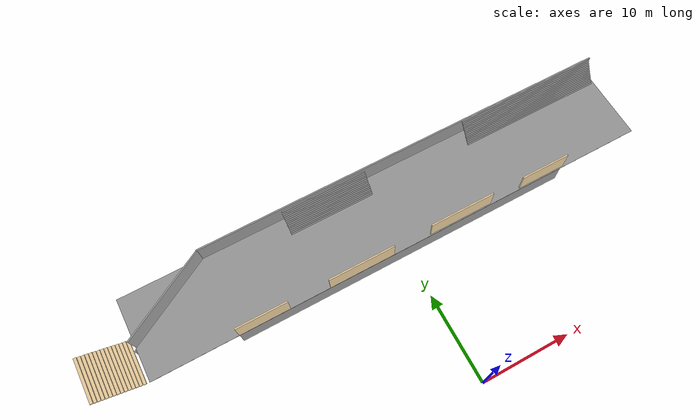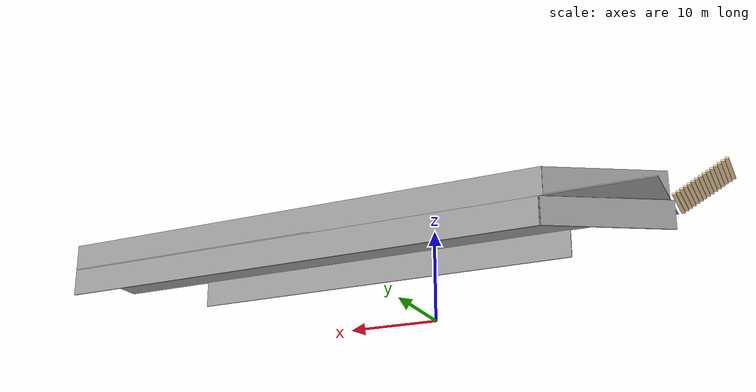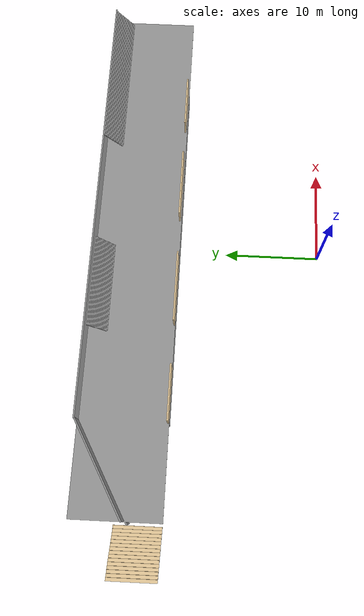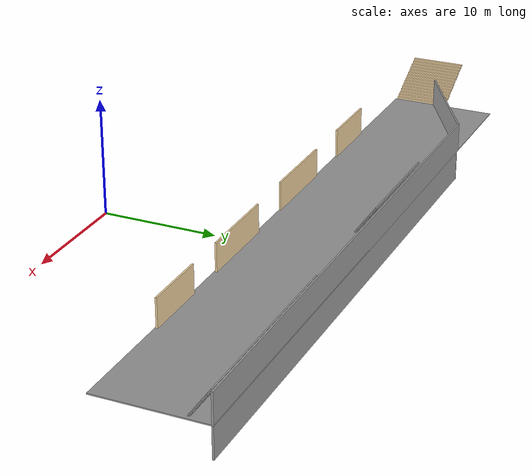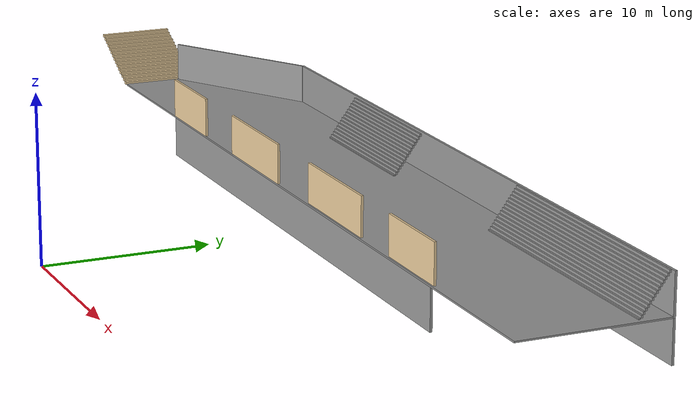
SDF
<?xml version='1.0'?>
<sdf version='1.7'>
  <model name='road1'>
    <pose>-2.28866 12.0199 0 0 -0 0</pose>
    <link name='Floor_3'>
      <collision name='Floor_3_Collision'>
        <geometry>
          <box>
            <size>56.1037 9.06127 0.1</size>
          </box>
        </geometry>
        <pose>0 0 0.05 0 -0 0</pose>
      </collision>
      <visual name='Floor_3_Visual'>
        <pose>0 0 0.05 0 -0 0</pose>
        <geometry>
          <box>
            <size>56.1037 9.06127 0.1</size>
          </box>
        </geometry>
        <material>
          <script>
            <uri>file://media/materials/scripts/gazebo.material</uri>
            <name>Gazebo/Grey</name>
          </script>
          <ambient>0.333333 0.341176 0.32549 1</ambient>
        </material>
        <meta>
          <layer>1</layer>
        </meta>
      </visual>
      <pose>2.4364 7.46177 2.5 0 -0 0</pose>
    </link>
    <link name='Stairs_0'>
      <visual name='Stairs_0_Visual_0'>
        <pose>-2.74973 9.89081 2.58333 0 -0 -3.14159</pose>
        <geometry>
          <box>
            <size>9.43495 0.119671 0.166667</size>
          </box>
        </geometry>
        <material>
          <script>
            <uri>file://media/materials/scripts/gazebo.material</uri>
            <name>Gazebo/Grey</name>
          </script>
          <ambient>1 1 1 1</ambient>
        </material>
        <meta>
          <layer>1</layer>
        </meta>
      </visual>
      <collision name='Stairs_0_Collision_0'>
        <geometry>
          <box>
            <size>9.43495 0.119671 0.166667</size>
          </box>
        </geometry>
        <pose>-2.74973 9.89081 2.58333 0 -0 -3.14159</pose>
      </collision>
      <visual name='Stairs_0_Visual_1'>
        <pose>-2.74973 10.0105 2.75 0 -0 -3.14159</pose>
        <geometry>
          <box>
            <size>9.43495 0.119671 0.166667</size>
          </box>
        </geometry>
        <material>
          <script>
            <uri>file://media/materials/scripts/gazebo.material</uri>
            <name>Gazebo/Grey</name>
          </script>
          <ambient>1 1 1 1</ambient>
        </material>
        <meta>
          <layer>1</layer>
        </meta>
      </visual>
      <collision name='Stairs_0_Collision_1'>
        <geometry>
          <box>
            <size>9.43495 0.119671 0.166667</size>
          </box>
        </geometry>
        <pose>-2.74973 10.0105 2.75 0 -0 -3.14159</pose>
      </collision>
      <visual name='Stairs_0_Visual_2'>
        <pose>-2.74973 10.1302 2.91667 0 -0 -3.14159</pose>
        <geometry>
          <box>
            <size>9.43495 0.119671 0.166667</size>
          </box>
        </geometry>
        <material>
          <script>
            <uri>file://media/materials/scripts/gazebo.material</uri>
            <name>Gazebo/Grey</name>
          </script>
          <ambient>1 1 1 1</ambient>
        </material>
        <meta>
          <layer>1</layer>
        </meta>
      </visual>
      <collision name='Stairs_0_Collision_2'>
        <geometry>
          <box>
            <size>9.43495 0.119671 0.166667</size>
          </box>
        </geometry>
        <pose>-2.74973 10.1302 2.91667 0 -0 -3.14159</pose>
      </collision>
      <visual name='Stairs_0_Visual_3'>
        <pose>-2.74973 10.2498 3.08333 0 -0 -3.14159</pose>
        <geometry>
          <box>
            <size>9.43495 0.119671 0.166667</size>
          </box>
        </geometry>
        <material>
          <script>
            <uri>file://media/materials/scripts/gazebo.material</uri>
            <name>Gazebo/Grey</name>
          </script>
          <ambient>1 1 1 1</ambient>
        </material>
        <meta>
          <layer>1</layer>
        </meta>
      </visual>
      <collision name='Stairs_0_Collision_3'>
        <geometry>
          <box>
            <size>9.43495 0.119671 0.166667</size>
          </box>
        </geometry>
        <pose>-2.74973 10.2498 3.08333 0 -0 -3.14159</pose>
      </collision>
      <visual name='Stairs_0_Visual_4'>
        <pose>-2.74973 10.3695 3.25 0 -0 -3.14159</pose>
        <geometry>
          <box>
            <size>9.43495 0.119671 0.166667</size>
          </box>
        </geometry>
        <material>
          <script>
            <uri>file://media/materials/scripts/gazebo.material</uri>
            <name>Gazebo/Grey</name>
          </script>
          <ambient>1 1 1 1</ambient>
        </material>
        <meta>
          <layer>1</layer>
        </meta>
      </visual>
      <collision name='Stairs_0_Collision_4'>
        <geometry>
          <box>
            <size>9.43495 0.119671 0.166667</size>
          </box>
        </geometry>
        <pose>-2.74973 10.3695 3.25 0 -0 -3.14159</pose>
      </collision>
      <visual name='Stairs_0_Visual_5'>
        <pose>-2.74973 10.4892 3.41667 0 -0 -3.14159</pose>
        <geometry>
          <box>
            <size>9.43495 0.119671 0.166667</size>
          </box>
        </geometry>
        <material>
          <script>
            <uri>file://media/materials/scripts/gazebo.material</uri>
            <name>Gazebo/Grey</name>
          </script>
          <ambient>1 1 1 1</ambient>
        </material>
        <meta>
          <layer>1</layer>
        </meta>
      </visual>
      <collision name='Stairs_0_Collision_5'>
        <geometry>
          <box>
            <size>9.43495 0.119671 0.166667</size>
          </box>
        </geometry>
        <pose>-2.74973 10.4892 3.41667 0 -0 -3.14159</pose>
      </collision>
      <visual name='Stairs_0_Visual_6'>
        <pose>-2.74973 10.6088 3.58333 0 -0 -3.14159</pose>
        <geometry>
          <box>
            <size>9.43495 0.119671 0.166667</size>
          </box>
        </geometry>
        <material>
          <script>
            <uri>file://media/materials/scripts/gazebo.material</uri>
            <name>Gazebo/Grey</name>
          </script>
          <ambient>1 1 1 1</ambient>
        </material>
        <meta>
          <layer>1</layer>
        </meta>
      </visual>
      <collision name='Stairs_0_Collision_6'>
        <geometry>
          <box>
            <size>9.43495 0.119671 0.166667</size>
          </box>
        </geometry>
        <pose>-2.74973 10.6088 3.58333 0 -0 -3.14159</pose>
      </collision>
      <visual name='Stairs_0_Visual_7'>
        <pose>-2.74973 10.7285 3.75 0 -0 -3.14159</pose>
        <geometry>
          <box>
            <size>9.43495 0.119671 0.166667</size>
          </box>
        </geometry>
        <material>
          <script>
            <uri>file://media/materials/scripts/gazebo.material</uri>
            <name>Gazebo/Grey</name>
          </script>
          <ambient>1 1 1 1</ambient>
        </material>
        <meta>
          <layer>1</layer>
        </meta>
      </visual>
      <collision name='Stairs_0_Collision_7'>
        <geometry>
          <box>
            <size>9.43495 0.119671 0.166667</size>
          </box>
        </geometry>
        <pose>-2.74973 10.7285 3.75 0 -0 -3.14159</pose>
      </collision>
      <visual name='Stairs_0_Visual_8'>
        <pose>-2.74973 10.8482 3.91667 0 -0 -3.14159</pose>
        <geometry>
          <box>
            <size>9.43495 0.119671 0.166667</size>
          </box>
        </geometry>
        <material>
          <script>
            <uri>file://media/materials/scripts/gazebo.material</uri>
            <name>Gazebo/Grey</name>
          </script>
          <ambient>1 1 1 1</ambient>
        </material>
        <meta>
          <layer>1</layer>
        </meta>
      </visual>
      <collision name='Stairs_0_Collision_8'>
        <geometry>
          <box>
            <size>9.43495 0.119671 0.166667</size>
          </box>
        </geometry>
        <pose>-2.74973 10.8482 3.91667 0 -0 -3.14159</pose>
      </collision>
      <visual name='Stairs_0_Visual_9'>
        <pose>-2.74973 10.9678 4.08333 0 -0 -3.14159</pose>
        <geometry>
          <box>
            <size>9.43495 0.119671 0.166667</size>
          </box>
        </geometry>
        <material>
          <script>
            <uri>file://media/materials/scripts/gazebo.material</uri>
            <name>Gazebo/Grey</name>
          </script>
          <ambient>1 1 1 1</ambient>
        </material>
        <meta>
          <layer>1</layer>
        </meta>
      </visual>
      <collision name='Stairs_0_Collision_9'>
        <geometry>
          <box>
            <size>9.43495 0.119671 0.166667</size>
          </box>
        </geometry>
        <pose>-2.74973 10.9678 4.08333 0 -0 -3.14159</pose>
      </collision>
      <visual name='Stairs_0_Visual_10'>
        <pose>-2.74973 11.0875 4.25 0 -0 -3.14159</pose>
        <geometry>
          <box>
            <size>9.43495 0.119671 0.166667</size>
          </box>
        </geometry>
        <material>
          <script>
            <uri>file://media/materials/scripts/gazebo.material</uri>
            <name>Gazebo/Grey</name>
          </script>
          <ambient>1 1 1 1</ambient>
        </material>
        <meta>
          <layer>1</layer>
        </meta>
      </visual>
      <collision name='Stairs_0_Collision_10'>
        <geometry>
          <box>
            <size>9.43495 0.119671 0.166667</size>
          </box>
        </geometry>
        <pose>-2.74973 11.0875 4.25 0 -0 -3.14159</pose>
      </collision>
      <visual name='Stairs_0_Visual_11'>
        <pose>-2.74973 11.2072 4.41667 0 -0 -3.14159</pose>
        <geometry>
          <box>
            <size>9.43495 0.119671 0.166667</size>
          </box>
        </geometry>
        <material>
          <script>
            <uri>file://media/materials/scripts/gazebo.material</uri>
            <name>Gazebo/Grey</name>
          </script>
          <ambient>1 1 1 1</ambient>
        </material>
        <meta>
          <layer>1</layer>
        </meta>
      </visual>
      <collision name='Stairs_0_Collision_11'>
        <geometry>
          <box>
            <size>9.43495 0.119671 0.166667</size>
          </box>
        </geometry>
        <pose>-2.74973 11.2072 4.41667 0 -0 -3.14159</pose>
      </collision>
      <visual name='Stairs_0_Visual_12'>
        <pose>-2.74973 11.3269 4.58333 0 -0 -3.14159</pose>
        <geometry>
          <box>
            <size>9.43495 0.119671 0.166667</size>
          </box>
        </geometry>
        <material>
          <script>
            <uri>file://media/materials/scripts/gazebo.material</uri>
            <name>Gazebo/Grey</name>
          </script>
          <ambient>1 1 1 1</ambient>
        </material>
        <meta>
          <layer>1</layer>
        </meta>
      </visual>
      <collision name='Stairs_0_Collision_12'>
        <geometry>
          <box>
            <size>9.43495 0.119671 0.166667</size>
          </box>
        </geometry>
        <pose>-2.74973 11.3269 4.58333 0 -0 -3.14159</pose>
      </collision>
      <visual name='Stairs_0_Visual_13'>
        <pose>-2.74973 11.4465 4.75 0 -0 -3.14159</pose>
        <geometry>
          <box>
            <size>9.43495 0.119671 0.166667</size>
          </box>
        </geometry>
        <material>
          <script>
            <uri>file://media/materials/scripts/gazebo.material</uri>
            <name>Gazebo/Grey</name>
          </script>
          <ambient>1 1 1 1</ambient>
        </material>
        <meta>
          <layer>1</layer>
        </meta>
      </visual>
      <collision name='Stairs_0_Collision_13'>
        <geometry>
          <box>
            <size>9.43495 0.119671 0.166667</size>
          </box>
        </geometry>
        <pose>-2.74973 11.4465 4.75 0 -0 -3.14159</pose>
      </collision>
      <visual name='Stairs_0_Visual_14'>
        <pose>-2.74973 11.5662 4.91667 0 -0 -3.14159</pose>
        <geometry>
          <box>
            <size>9.43495 0.119671 0.166667</size>
          </box>
        </geometry>
        <material>
          <script>
            <uri>file://media/materials/scripts/gazebo.material</uri>
            <name>Gazebo/Grey</name>
          </script>
          <ambient>1 1 1 1</ambient>
        </material>
        <meta>
          <layer>1</layer>
        </meta>
      </visual>
      <collision name='Stairs_0_Collision_14'>
        <geometry>
          <box>
            <size>9.43495 0.119671 0.166667</size>
          </box>
        </geometry>
        <pose>-2.74973 11.5662 4.91667 0 -0 -3.14159</pose>
      </collision>
    </link>
    <link name='Stairs_1'>
      <visual name='Stairs_1_Visual_0'>
        <pose>22.0259 10.084 2.58333 0 -0 -3.14159</pose>
        <geometry>
          <box>
            <size>16.378 0.119843 0.166667</size>
          </box>
        </geometry>
        <material>
          <script>
            <uri>file://media/materials/scripts/gazebo.material</uri>
            <name>Gazebo/Grey</name>
          </script>
          <ambient>1 1 1 1</ambient>
        </material>
        <meta>
          <layer>1</layer>
        </meta>
      </visual>
      <collision name='Stairs_1_Collision_0'>
        <geometry>
          <box>
            <size>16.378 0.119843 0.166667</size>
          </box>
        </geometry>
        <pose>22.0259 10.084 2.58333 0 -0 -3.14159</pose>
      </collision>
      <visual name='Stairs_1_Visual_1'>
        <pose>22.0259 10.2039 2.75 0 -0 -3.14159</pose>
        <geometry>
          <box>
            <size>16.378 0.119843 0.166667</size>
          </box>
        </geometry>
        <material>
          <script>
            <uri>file://media/materials/scripts/gazebo.material</uri>
            <name>Gazebo/Grey</name>
          </script>
          <ambient>1 1 1 1</ambient>
        </material>
        <meta>
          <layer>1</layer>
        </meta>
      </visual>
      <collision name='Stairs_1_Collision_1'>
        <geometry>
          <box>
            <size>16.378 0.119843 0.166667</size>
          </box>
        </geometry>
        <pose>22.0259 10.2039 2.75 0 -0 -3.14159</pose>
      </collision>
      <visual name='Stairs_1_Visual_2'>
        <pose>22.0259 10.3237 2.91667 0 -0 -3.14159</pose>
        <geometry>
          <box>
            <size>16.378 0.119843 0.166667</size>
          </box>
        </geometry>
        <material>
          <script>
            <uri>file://media/materials/scripts/gazebo.material</uri>
            <name>Gazebo/Grey</name>
          </script>
          <ambient>1 1 1 1</ambient>
        </material>
        <meta>
          <layer>1</layer>
        </meta>
      </visual>
      <collision name='Stairs_1_Collision_2'>
        <geometry>
          <box>
            <size>16.378 0.119843 0.166667</size>
          </box>
        </geometry>
        <pose>22.0259 10.3237 2.91667 0 -0 -3.14159</pose>
      </collision>
      <visual name='Stairs_1_Visual_3'>
        <pose>22.0259 10.4436 3.08333 0 -0 -3.14159</pose>
        <geometry>
          <box>
            <size>16.378 0.119843 0.166667</size>
          </box>
        </geometry>
        <material>
          <script>
            <uri>file://media/materials/scripts/gazebo.material</uri>
            <name>Gazebo/Grey</name>
          </script>
          <ambient>1 1 1 1</ambient>
        </material>
        <meta>
          <layer>1</layer>
        </meta>
      </visual>
      <collision name='Stairs_1_Collision_3'>
        <geometry>
          <box>
            <size>16.378 0.119843 0.166667</size>
          </box>
        </geometry>
        <pose>22.0259 10.4436 3.08333 0 -0 -3.14159</pose>
      </collision>
      <visual name='Stairs_1_Visual_4'>
        <pose>22.0259 10.5634 3.25 0 -0 -3.14159</pose>
        <geometry>
          <box>
            <size>16.378 0.119843 0.166667</size>
          </box>
        </geometry>
        <material>
          <script>
            <uri>file://media/materials/scripts/gazebo.material</uri>
            <name>Gazebo/Grey</name>
          </script>
          <ambient>1 1 1 1</ambient>
        </material>
        <meta>
          <layer>1</layer>
        </meta>
      </visual>
      <collision name='Stairs_1_Collision_4'>
        <geometry>
          <box>
            <size>16.378 0.119843 0.166667</size>
          </box>
        </geometry>
        <pose>22.0259 10.5634 3.25 0 -0 -3.14159</pose>
      </collision>
      <visual name='Stairs_1_Visual_5'>
        <pose>22.0259 10.6832 3.41667 0 -0 -3.14159</pose>
        <geometry>
          <box>
            <size>16.378 0.119843 0.166667</size>
          </box>
        </geometry>
        <material>
          <script>
            <uri>file://media/materials/scripts/gazebo.material</uri>
            <name>Gazebo/Grey</name>
          </script>
          <ambient>1 1 1 1</ambient>
        </material>
        <meta>
          <layer>1</layer>
        </meta>
      </visual>
      <collision name='Stairs_1_Collision_5'>
        <geometry>
          <box>
            <size>16.378 0.119843 0.166667</size>
          </box>
        </geometry>
        <pose>22.0259 10.6832 3.41667 0 -0 -3.14159</pose>
      </collision>
      <visual name='Stairs_1_Visual_6'>
        <pose>22.0259 10.8031 3.58333 0 -0 -3.14159</pose>
        <geometry>
          <box>
            <size>16.378 0.119843 0.166667</size>
          </box>
        </geometry>
        <material>
          <script>
            <uri>file://media/materials/scripts/gazebo.material</uri>
            <name>Gazebo/Grey</name>
          </script>
          <ambient>1 1 1 1</ambient>
        </material>
        <meta>
          <layer>1</layer>
        </meta>
      </visual>
      <collision name='Stairs_1_Collision_6'>
        <geometry>
          <box>
            <size>16.378 0.119843 0.166667</size>
          </box>
        </geometry>
        <pose>22.0259 10.8031 3.58333 0 -0 -3.14159</pose>
      </collision>
      <visual name='Stairs_1_Visual_7'>
        <pose>22.0259 10.9229 3.75 0 -0 -3.14159</pose>
        <geometry>
          <box>
            <size>16.378 0.119843 0.166667</size>
          </box>
        </geometry>
        <material>
          <script>
            <uri>file://media/materials/scripts/gazebo.material</uri>
            <name>Gazebo/Grey</name>
          </script>
          <ambient>1 1 1 1</ambient>
        </material>
        <meta>
          <layer>1</layer>
        </meta>
      </visual>
      <collision name='Stairs_1_Collision_7'>
        <geometry>
          <box>
            <size>16.378 0.119843 0.166667</size>
          </box>
        </geometry>
        <pose>22.0259 10.9229 3.75 0 -0 -3.14159</pose>
      </collision>
      <visual name='Stairs_1_Visual_8'>
        <pose>22.0259 11.0428 3.91667 0 -0 -3.14159</pose>
        <geometry>
          <box>
            <size>16.378 0.119843 0.166667</size>
          </box>
        </geometry>
        <material>
          <script>
            <uri>file://media/materials/scripts/gazebo.material</uri>
            <name>Gazebo/Grey</name>
          </script>
          <ambient>1 1 1 1</ambient>
        </material>
        <meta>
          <layer>1</layer>
        </meta>
      </visual>
      <collision name='Stairs_1_Collision_8'>
        <geometry>
          <box>
            <size>16.378 0.119843 0.166667</size>
          </box>
        </geometry>
        <pose>22.0259 11.0428 3.91667 0 -0 -3.14159</pose>
      </collision>
      <visual name='Stairs_1_Visual_9'>
        <pose>22.0259 11.1626 4.08333 0 -0 -3.14159</pose>
        <geometry>
          <box>
            <size>16.378 0.119843 0.166667</size>
          </box>
        </geometry>
        <material>
          <script>
            <uri>file://media/materials/scripts/gazebo.material</uri>
            <name>Gazebo/Grey</name>
          </script>
          <ambient>1 1 1 1</ambient>
        </material>
        <meta>
          <layer>1</layer>
        </meta>
      </visual>
      <collision name='Stairs_1_Collision_9'>
        <geometry>
          <box>
            <size>16.378 0.119843 0.166667</size>
          </box>
        </geometry>
        <pose>22.0259 11.1626 4.08333 0 -0 -3.14159</pose>
      </collision>
      <visual name='Stairs_1_Visual_10'>
        <pose>22.0259 11.2825 4.25 0 -0 -3.14159</pose>
        <geometry>
          <box>
            <size>16.378 0.119843 0.166667</size>
          </box>
        </geometry>
        <material>
          <script>
            <uri>file://media/materials/scripts/gazebo.material</uri>
            <name>Gazebo/Grey</name>
          </script>
          <ambient>1 1 1 1</ambient>
        </material>
        <meta>
          <layer>1</layer>
        </meta>
      </visual>
      <collision name='Stairs_1_Collision_10'>
        <geometry>
          <box>
            <size>16.378 0.119843 0.166667</size>
          </box>
        </geometry>
        <pose>22.0259 11.2825 4.25 0 -0 -3.14159</pose>
      </collision>
      <visual name='Stairs_1_Visual_11'>
        <pose>22.0259 11.4023 4.41667 0 -0 -3.14159</pose>
        <geometry>
          <box>
            <size>16.378 0.119843 0.166667</size>
          </box>
        </geometry>
        <material>
          <script>
            <uri>file://media/materials/scripts/gazebo.material</uri>
            <name>Gazebo/Grey</name>
          </script>
          <ambient>1 1 1 1</ambient>
        </material>
        <meta>
          <layer>1</layer>
        </meta>
      </visual>
      <collision name='Stairs_1_Collision_11'>
        <geometry>
          <box>
            <size>16.378 0.119843 0.166667</size>
          </box>
        </geometry>
        <pose>22.0259 11.4023 4.41667 0 -0 -3.14159</pose>
      </collision>
      <visual name='Stairs_1_Visual_12'>
        <pose>22.0259 11.5221 4.58333 0 -0 -3.14159</pose>
        <geometry>
          <box>
            <size>16.378 0.119843 0.166667</size>
          </box>
        </geometry>
        <material>
          <script>
            <uri>file://media/materials/scripts/gazebo.material</uri>
            <name>Gazebo/Grey</name>
          </script>
          <ambient>1 1 1 1</ambient>
        </material>
        <meta>
          <layer>1</layer>
        </meta>
      </visual>
      <collision name='Stairs_1_Collision_12'>
        <geometry>
          <box>
            <size>16.378 0.119843 0.166667</size>
          </box>
        </geometry>
        <pose>22.0259 11.5221 4.58333 0 -0 -3.14159</pose>
      </collision>
      <visual name='Stairs_1_Visual_13'>
        <pose>22.0259 11.642 4.75 0 -0 -3.14159</pose>
        <geometry>
          <box>
            <size>16.378 0.119843 0.166667</size>
          </box>
        </geometry>
        <material>
          <script>
            <uri>file://media/materials/scripts/gazebo.material</uri>
            <name>Gazebo/Grey</name>
          </script>
          <ambient>1 1 1 1</ambient>
        </material>
        <meta>
          <layer>1</layer>
        </meta>
      </visual>
      <collision name='Stairs_1_Collision_13'>
        <geometry>
          <box>
            <size>16.378 0.119843 0.166667</size>
          </box>
        </geometry>
        <pose>22.0259 11.642 4.75 0 -0 -3.14159</pose>
      </collision>
      <visual name='Stairs_1_Visual_14'>
        <pose>22.0259 11.7618 4.91667 0 -0 -3.14159</pose>
        <geometry>
          <box>
            <size>16.378 0.119843 0.166667</size>
          </box>
        </geometry>
        <material>
          <script>
            <uri>file://media/materials/scripts/gazebo.material</uri>
            <name>Gazebo/Grey</name>
          </script>
          <ambient>1 1 1 1</ambient>
        </material>
        <meta>
          <layer>1</layer>
        </meta>
      </visual>
      <collision name='Stairs_1_Collision_14'>
        <geometry>
          <box>
            <size>16.378 0.119843 0.166667</size>
          </box>
        </geometry>
        <pose>22.0259 11.7618 4.91667 0 -0 -3.14159</pose>
      </collision>
    </link>
    <link name='Stairs_3'>
      <visual name='Stairs_3_Visual_0'>
        <pose>-26.0551 5.27753 2.58333 0 -0 -1.5708</pose>
        <geometry>
          <box>
            <size>4.65 0.305733 0.166667</size>
          </box>
        </geometry>
        <material>
          <script>
            <uri>file://media/materials/scripts/gazebo.material</uri>
            <name>Gazebo/Grey</name>
          </script>
          <ambient>0.921569 0.807843 0.615686 1</ambient>
        </material>
        <meta>
          <layer>1</layer>
        </meta>
      </visual>
      <collision name='Stairs_3_Collision_0'>
        <geometry>
          <box>
            <size>4.65 0.305733 0.166667</size>
          </box>
        </geometry>
        <pose>-26.0551 5.27753 2.58333 0 -0 -1.5708</pose>
      </collision>
      <visual name='Stairs_3_Visual_1'>
        <pose>-26.3608 5.27753 2.75 0 -0 -1.5708</pose>
        <geometry>
          <box>
            <size>4.65 0.305733 0.166667</size>
          </box>
        </geometry>
        <material>
          <script>
            <uri>file://media/materials/scripts/gazebo.material</uri>
            <name>Gazebo/Grey</name>
          </script>
          <ambient>0.921569 0.807843 0.615686 1</ambient>
        </material>
        <meta>
          <layer>1</layer>
        </meta>
      </visual>
      <collision name='Stairs_3_Collision_1'>
        <geometry>
          <box>
            <size>4.65 0.305733 0.166667</size>
          </box>
        </geometry>
        <pose>-26.3608 5.27753 2.75 0 -0 -1.5708</pose>
      </collision>
      <visual name='Stairs_3_Visual_2'>
        <pose>-26.6666 5.27753 2.91667 0 -0 -1.5708</pose>
        <geometry>
          <box>
            <size>4.65 0.305733 0.166667</size>
          </box>
        </geometry>
        <material>
          <script>
            <uri>file://media/materials/scripts/gazebo.material</uri>
            <name>Gazebo/Grey</name>
          </script>
          <ambient>0.921569 0.807843 0.615686 1</ambient>
        </material>
        <meta>
          <layer>1</layer>
        </meta>
      </visual>
      <collision name='Stairs_3_Collision_2'>
        <geometry>
          <box>
            <size>4.65 0.305733 0.166667</size>
          </box>
        </geometry>
        <pose>-26.6666 5.27753 2.91667 0 -0 -1.5708</pose>
      </collision>
      <visual name='Stairs_3_Visual_3'>
        <pose>-26.9723 5.27753 3.08333 0 -0 -1.5708</pose>
        <geometry>
          <box>
            <size>4.65 0.305733 0.166667</size>
          </box>
        </geometry>
        <material>
          <script>
            <uri>file://media/materials/scripts/gazebo.material</uri>
            <name>Gazebo/Grey</name>
          </script>
          <ambient>0.921569 0.807843 0.615686 1</ambient>
        </material>
        <meta>
          <layer>1</layer>
        </meta>
      </visual>
      <collision name='Stairs_3_Collision_3'>
        <geometry>
          <box>
            <size>4.65 0.305733 0.166667</size>
          </box>
        </geometry>
        <pose>-26.9723 5.27753 3.08333 0 -0 -1.5708</pose>
      </collision>
      <visual name='Stairs_3_Visual_4'>
        <pose>-27.278 5.27753 3.25 0 -0 -1.5708</pose>
        <geometry>
          <box>
            <size>4.65 0.305733 0.166667</size>
          </box>
        </geometry>
        <material>
          <script>
            <uri>file://media/materials/scripts/gazebo.material</uri>
            <name>Gazebo/Grey</name>
          </script>
          <ambient>0.921569 0.807843 0.615686 1</ambient>
        </material>
        <meta>
          <layer>1</layer>
        </meta>
      </visual>
      <collision name='Stairs_3_Collision_4'>
        <geometry>
          <box>
            <size>4.65 0.305733 0.166667</size>
          </box>
        </geometry>
        <pose>-27.278 5.27753 3.25 0 -0 -1.5708</pose>
      </collision>
      <visual name='Stairs_3_Visual_5'>
        <pose>-27.5838 5.27753 3.41667 0 -0 -1.5708</pose>
        <geometry>
          <box>
            <size>4.65 0.305733 0.166667</size>
          </box>
        </geometry>
        <material>
          <script>
            <uri>file://media/materials/scripts/gazebo.material</uri>
            <name>Gazebo/Grey</name>
          </script>
          <ambient>0.921569 0.807843 0.615686 1</ambient>
        </material>
        <meta>
          <layer>1</layer>
        </meta>
      </visual>
      <collision name='Stairs_3_Collision_5'>
        <geometry>
          <box>
            <size>4.65 0.305733 0.166667</size>
          </box>
        </geometry>
        <pose>-27.5838 5.27753 3.41667 0 -0 -1.5708</pose>
      </collision>
      <visual name='Stairs_3_Visual_6'>
        <pose>-27.8895 5.27753 3.58333 0 -0 -1.5708</pose>
        <geometry>
          <box>
            <size>4.65 0.305733 0.166667</size>
          </box>
        </geometry>
        <material>
          <script>
            <uri>file://media/materials/scripts/gazebo.material</uri>
            <name>Gazebo/Grey</name>
          </script>
          <ambient>0.921569 0.807843 0.615686 1</ambient>
        </material>
        <meta>
          <layer>1</layer>
        </meta>
      </visual>
      <collision name='Stairs_3_Collision_6'>
        <geometry>
          <box>
            <size>4.65 0.305733 0.166667</size>
          </box>
        </geometry>
        <pose>-27.8895 5.27753 3.58333 0 -0 -1.5708</pose>
      </collision>
      <visual name='Stairs_3_Visual_7'>
        <pose>-28.1952 5.27753 3.75 0 -0 -1.5708</pose>
        <geometry>
          <box>
            <size>4.65 0.305733 0.166667</size>
          </box>
        </geometry>
        <material>
          <script>
            <uri>file://media/materials/scripts/gazebo.material</uri>
            <name>Gazebo/Grey</name>
          </script>
          <ambient>0.921569 0.807843 0.615686 1</ambient>
        </material>
        <meta>
          <layer>1</layer>
        </meta>
      </visual>
      <collision name='Stairs_3_Collision_7'>
        <geometry>
          <box>
            <size>4.65 0.305733 0.166667</size>
          </box>
        </geometry>
        <pose>-28.1952 5.27753 3.75 0 -0 -1.5708</pose>
      </collision>
      <visual name='Stairs_3_Visual_8'>
        <pose>-28.501 5.27753 3.91667 0 -0 -1.5708</pose>
        <geometry>
          <box>
            <size>4.65 0.305733 0.166667</size>
          </box>
        </geometry>
        <material>
          <script>
            <uri>file://media/materials/scripts/gazebo.material</uri>
            <name>Gazebo/Grey</name>
          </script>
          <ambient>0.921569 0.807843 0.615686 1</ambient>
        </material>
        <meta>
          <layer>1</layer>
        </meta>
      </visual>
      <collision name='Stairs_3_Collision_8'>
        <geometry>
          <box>
            <size>4.65 0.305733 0.166667</size>
          </box>
        </geometry>
        <pose>-28.501 5.27753 3.91667 0 -0 -1.5708</pose>
      </collision>
      <visual name='Stairs_3_Visual_9'>
        <pose>-28.8067 5.27753 4.08333 0 -0 -1.5708</pose>
        <geometry>
          <box>
            <size>4.65 0.305733 0.166667</size>
          </box>
        </geometry>
        <material>
          <script>
            <uri>file://media/materials/scripts/gazebo.material</uri>
            <name>Gazebo/Grey</name>
          </script>
          <ambient>0.921569 0.807843 0.615686 1</ambient>
        </material>
        <meta>
          <layer>1</layer>
        </meta>
      </visual>
      <collision name='Stairs_3_Collision_9'>
        <geometry>
          <box>
            <size>4.65 0.305733 0.166667</size>
          </box>
        </geometry>
        <pose>-28.8067 5.27753 4.08333 0 -0 -1.5708</pose>
      </collision>
      <visual name='Stairs_3_Visual_10'>
        <pose>-29.1124 5.27753 4.25 0 -0 -1.5708</pose>
        <geometry>
          <box>
            <size>4.65 0.305733 0.166667</size>
          </box>
        </geometry>
        <material>
          <script>
            <uri>file://media/materials/scripts/gazebo.material</uri>
            <name>Gazebo/Grey</name>
          </script>
          <ambient>0.921569 0.807843 0.615686 1</ambient>
        </material>
        <meta>
          <layer>1</layer>
        </meta>
      </visual>
      <collision name='Stairs_3_Collision_10'>
        <geometry>
          <box>
            <size>4.65 0.305733 0.166667</size>
          </box>
        </geometry>
        <pose>-29.1124 5.27753 4.25 0 -0 -1.5708</pose>
      </collision>
      <visual name='Stairs_3_Visual_11'>
        <pose>-29.4182 5.27753 4.41667 0 -0 -1.5708</pose>
        <geometry>
          <box>
            <size>4.65 0.305733 0.166667</size>
          </box>
        </geometry>
        <material>
          <script>
            <uri>file://media/materials/scripts/gazebo.material</uri>
            <name>Gazebo/Grey</name>
          </script>
          <ambient>0.921569 0.807843 0.615686 1</ambient>
        </material>
        <meta>
          <layer>1</layer>
        </meta>
      </visual>
      <collision name='Stairs_3_Collision_11'>
        <geometry>
          <box>
            <size>4.65 0.305733 0.166667</size>
          </box>
        </geometry>
        <pose>-29.4182 5.27753 4.41667 0 -0 -1.5708</pose>
      </collision>
      <visual name='Stairs_3_Visual_12'>
        <pose>-29.7239 5.27753 4.58333 0 -0 -1.5708</pose>
        <geometry>
          <box>
            <size>4.65 0.305733 0.166667</size>
          </box>
        </geometry>
        <material>
          <script>
            <uri>file://media/materials/scripts/gazebo.material</uri>
            <name>Gazebo/Grey</name>
          </script>
          <ambient>0.921569 0.807843 0.615686 1</ambient>
        </material>
        <meta>
          <layer>1</layer>
        </meta>
      </visual>
      <collision name='Stairs_3_Collision_12'>
        <geometry>
          <box>
            <size>4.65 0.305733 0.166667</size>
          </box>
        </geometry>
        <pose>-29.7239 5.27753 4.58333 0 -0 -1.5708</pose>
      </collision>
      <visual name='Stairs_3_Visual_13'>
        <pose>-30.0296 5.27753 4.75 0 -0 -1.5708</pose>
        <geometry>
          <box>
            <size>4.65 0.305733 0.166667</size>
          </box>
        </geometry>
        <material>
          <script>
            <uri>file://media/materials/scripts/gazebo.material</uri>
            <name>Gazebo/Grey</name>
          </script>
          <ambient>0.921569 0.807843 0.615686 1</ambient>
        </material>
        <meta>
          <layer>1</layer>
        </meta>
      </visual>
      <collision name='Stairs_3_Collision_13'>
        <geometry>
          <box>
            <size>4.65 0.305733 0.166667</size>
          </box>
        </geometry>
        <pose>-30.0296 5.27753 4.75 0 -0 -1.5708</pose>
      </collision>
      <visual name='Stairs_3_Visual_14'>
        <pose>-30.3354 5.27753 4.91667 0 -0 -1.5708</pose>
        <geometry>
          <box>
            <size>4.65 0.305733 0.166667</size>
          </box>
        </geometry>
        <material>
          <script>
            <uri>file://media/materials/scripts/gazebo.material</uri>
            <name>Gazebo/Grey</name>
          </script>
          <ambient>0.921569 0.807843 0.615686 1</ambient>
        </material>
        <meta>
          <layer>1</layer>
        </meta>
      </visual>
      <collision name='Stairs_3_Collision_14'>
        <geometry>
          <box>
            <size>4.65 0.305733 0.166667</size>
          </box>
        </geometry>
        <pose>-30.3354 5.27753 4.91667 0 -0 -1.5708</pose>
      </collision>
    </link>
    <link name='Wall_0'>
      <collision name='Wall_0_Collision'>
        <geometry>
          <box>
            <size>37.5 0.15 2.5</size>
          </box>
        </geometry>
        <pose>0 0 1.25 0 -0 0</pose>
      </collision>
      <visual name='Wall_0_Visual'>
        <pose>0 0 1.25 0 -0 0</pose>
        <geometry>
          <box>
            <size>37.5 0.15 2.5</size>
          </box>
        </geometry>
        <material>
          <script>
            <uri>file://media/materials/scripts/gazebo.material</uri>
            <name>Gazebo/Grey</name>
          </script>
          <ambient>1 1 1 1</ambient>
        </material>
        <meta>
          <layer>0</layer>
        </meta>
      </visual>
      <pose>2.3404 3.04449 0 0 -0 3.14159</pose>
    </link>
    <link name='Wall_17'>
      <collision name='Wall_17_Collision'>
        <geometry>
          <box>
            <size>47.0461 0.15 2.5</size>
          </box>
        </geometry>
        <pose>0 0 1.25 0 -0 0</pose>
      </collision>
      <visual name='Wall_17_Visual'>
        <pose>0 0 1.25 0 -0 0</pose>
        <geometry>
          <box>
            <size>47.0461 0.15 2.5</size>
          </box>
        </geometry>
        <material>
          <script>
            <uri>file://media/materials/scripts/gazebo.material</uri>
            <name>Gazebo/Grey</name>
          </script>
          <ambient>1 1 1 1</ambient>
        </material>
        <meta>
          <layer>1</layer>
        </meta>
      </visual>
      <pose>6.96521 11.9174 2.5 0 -0 3.14159</pose>
    </link>
    <link name='Wall_2'>
      <collision name='Wall_2_Collision'>
        <geometry>
          <box>
            <size>46.75 0.15 2.5</size>
          </box>
        </geometry>
        <pose>0 0 1.25 0 -0 0</pose>
      </collision>
      <visual name='Wall_2_Visual'>
        <pose>0 0 1.25 0 -0 0</pose>
        <geometry>
          <box>
            <size>46.75 0.15 2.5</size>
          </box>
        </geometry>
        <material>
          <script>
            <uri>file://media/materials/scripts/gazebo.material</uri>
            <name>Gazebo/Grey</name>
          </script>
          <ambient>1 1 1 1</ambient>
        </material>
        <meta>
          <layer>0</layer>
        </meta>
      </visual>
      <pose>7.11324 11.9174 0 0 -0 3.14159</pose>
    </link>
    <link name='Wall_22'>
      <collision name='Wall_22_Collision'>
        <geometry>
          <box>
            <size>5.5 0.15 2.5</size>
          </box>
        </geometry>
        <pose>0 0 1.25 0 -0 0</pose>
      </collision>
      <visual name='Wall_22_Visual'>
        <pose>0 0 1.25 0 -0 0</pose>
        <geometry>
          <box>
            <size>5.5 0.15 2.5</size>
          </box>
        </geometry>
        <material>
          <script>
            <uri>file://media/materials/scripts/gazebo.material</uri>
            <name>Gazebo/Grey</name>
          </script>
          <ambient>0.921569 0.807843 0.615686 1</ambient>
        </material>
        <meta>
          <layer>1</layer>
        </meta>
      </visual>
      <pose>18.6157 3.11014 2.5 0 -0 0</pose>
    </link>
    <link name='Wall_24'>
      <collision name='Wall_24_Collision'>
        <geometry>
          <box>
            <size>7.25 0.15 2.5</size>
          </box>
        </geometry>
        <pose>0 0 1.25 0 -0 0</pose>
      </collision>
      <visual name='Wall_24_Visual'>
        <pose>0 0 1.25 0 -0 0</pose>
        <geometry>
          <box>
            <size>7.25 0.15 2.5</size>
          </box>
        </geometry>
        <material>
          <script>
            <uri>file://media/materials/scripts/gazebo.material</uri>
            <name>Gazebo/Grey</name>
          </script>
          <ambient>0.921569 0.807843 0.615686 1</ambient>
        </material>
        <meta>
          <layer>1</layer>
        </meta>
      </visual>
      <pose>8.64066 3.11014 2.5 0 -0 3.14159</pose>
    </link>
    <link name='Wall_26'>
      <collision name='Wall_26_Collision'>
        <geometry>
          <box>
            <size>7.25 0.15 2.5</size>
          </box>
        </geometry>
        <pose>0 0 1.25 0 -0 0</pose>
      </collision>
      <visual name='Wall_26_Visual'>
        <pose>0 0 1.25 0 -0 0</pose>
        <geometry>
          <box>
            <size>7.25 0.15 2.5</size>
          </box>
        </geometry>
        <material>
          <script>
            <uri>file://media/materials/scripts/gazebo.material</uri>
            <name>Gazebo/Grey</name>
          </script>
          <ambient>0.921569 0.807843 0.615686 1</ambient>
        </material>
        <meta>
          <layer>1</layer>
        </meta>
      </visual>
      <pose>-2.91134 3.01214 2.5 0 -0 0</pose>
    </link>
    <link name='Wall_28'>
      <collision name='Wall_28_Collision'>
        <geometry>
          <box>
            <size>5.5 0.15 2.5</size>
          </box>
        </geometry>
        <pose>0 0 1.25 0 -0 0</pose>
      </collision>
      <visual name='Wall_28_Visual'>
        <pose>0 0 1.25 0 -0 0</pose>
        <geometry>
          <box>
            <size>5.5 0.15 2.5</size>
          </box>
        </geometry>
        <material>
          <script>
            <uri>file://media/materials/scripts/gazebo.material</uri>
            <name>Gazebo/Grey</name>
          </script>
          <ambient>0.921569 0.807843 0.615686 1</ambient>
        </material>
        <meta>
          <layer>1</layer>
        </meta>
      </visual>
      <pose>-13.6653 3.00614 2.5 0 -0 0</pose>
    </link>
    <link name='Wall_31'>
      <collision name='Wall_31_Collision'>
        <geometry>
          <box>
            <size>10.5 0.15 2.5</size>
          </box>
        </geometry>
        <pose>0 0 1.25 0 -0 0</pose>
      </collision>
      <visual name='Wall_31_Visual'>
        <pose>0 0 1.25 0 -0 0</pose>
        <geometry>
          <box>
            <size>10.5 0.15 2.5</size>
          </box>
        </geometry>
        <material>
          <script>
            <uri>file://media/materials/scripts/gazebo.material</uri>
            <name>Gazebo/Grey</name>
          </script>
          <ambient>1 1 1 1</ambient>
        </material>
        <meta>
          <layer>1</layer>
        </meta>
      </visual>
      <pose>-21.0313 9.26636 2.5 0 -0 -2.61799</pose>
    </link>
    <link name='Wall_5'>
      <collision name='Wall_5_Collision'>
        <geometry>
          <box>
            <size>11.25 0.15 2.5</size>
          </box>
        </geometry>
        <pose>0 0 1.25 0 -0 0</pose>
      </collision>
      <visual name='Wall_5_Visual'>
        <pose>0 0 1.25 0 -0 0</pose>
        <geometry>
          <box>
            <size>11.25 0.15 2.5</size>
          </box>
        </geometry>
        <material>
          <script>
            <uri>file://media/materials/scripts/gazebo.material</uri>
            <name>Gazebo/Grey</name>
          </script>
          <ambient>1 1 1 1</ambient>
        </material>
        <meta>
          <layer>0</layer>
        </meta>
      </visual>
      <pose>-20.9932 9.14241 0 0 -0 -2.61799</pose>
    </link>
    <static>1</static>
  </model>
</sdf>
